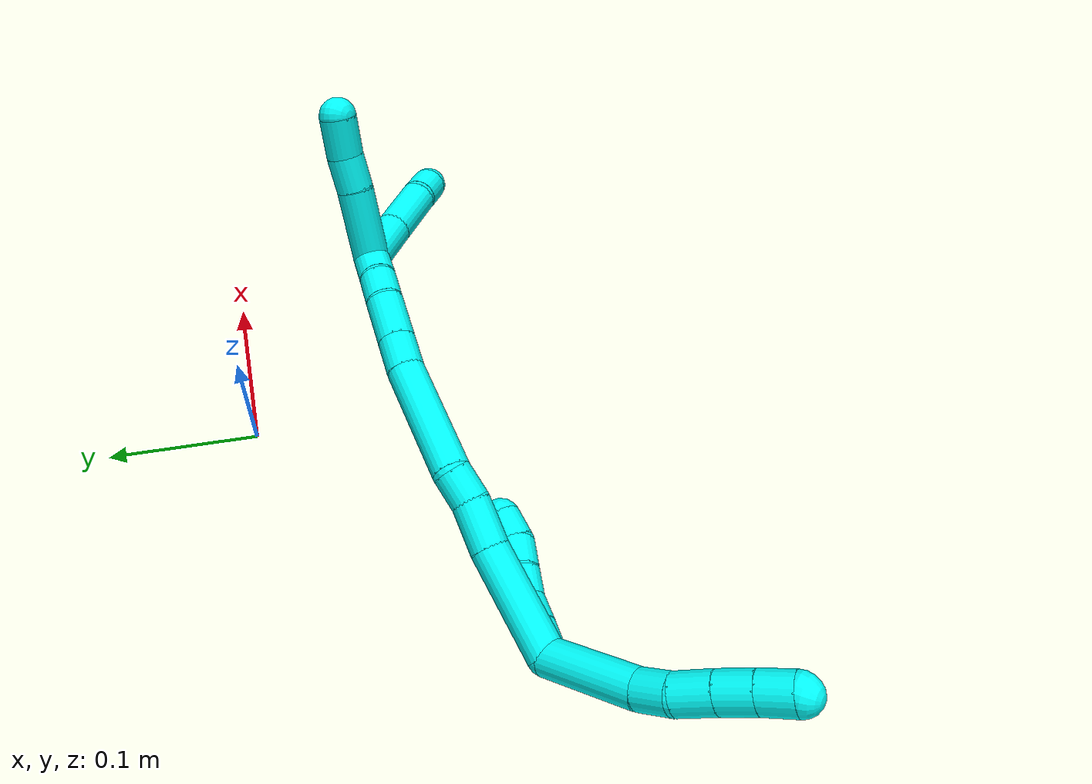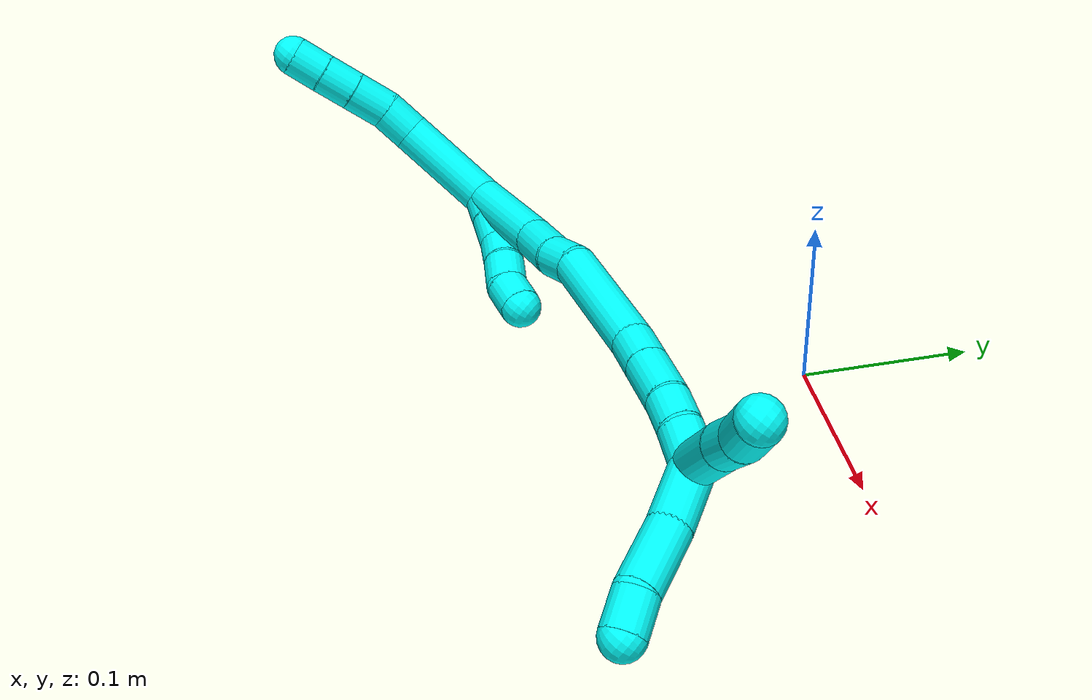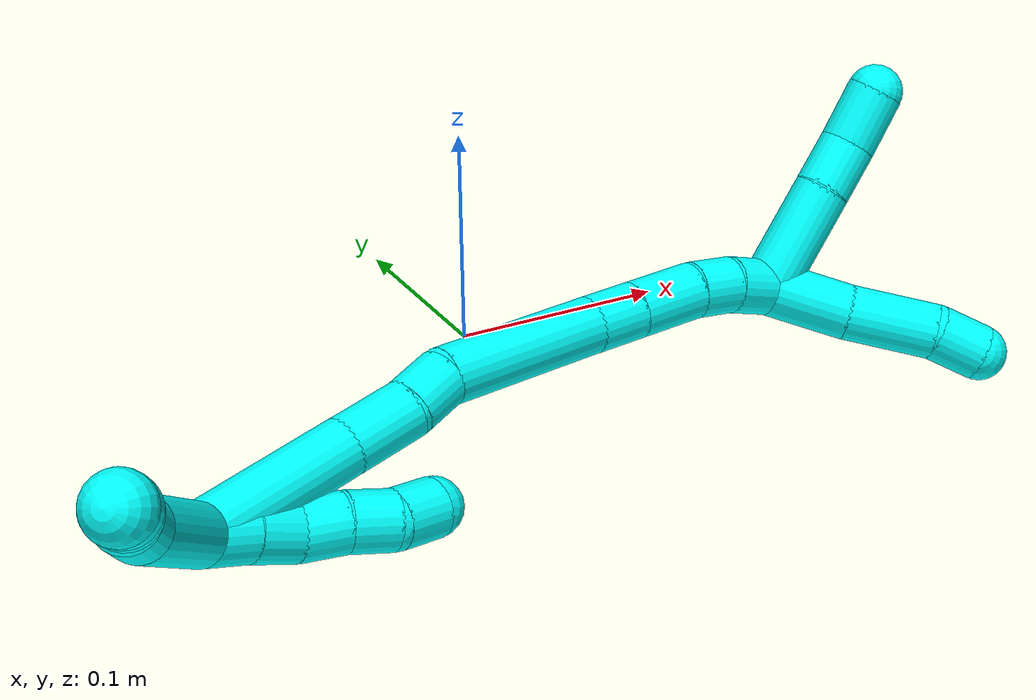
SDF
<sdf version="1.7">
 <world name="default">
  <model name="photoneo_s_sensor">
   <static>1</static>
   <pose>0 0 2 1.57079 1.57079 3.14159</pose>
   <link name="link">
    <inertial><mass>0.1</mass></inertial>
    <sensor name="sensor" type="depth">
     <update_rate>30</update_rate>
     <camera>
      <horizontal_fov>1.22</horizontal_fov>
      <image><width>1920</width><height>1200</height><format>B8G8R8</format></image>
      <clip><near>0.1</near><far>4</far></clip>
      <depth_camera><output>points</output></depth_camera>
     </camera>
     <plugin name="camera_plugin" filename="libgazebo_ros_depth_camera.so">
      <baseline>0.2</baseline>
      <alwaysOn>1</alwaysOn>
      <updateRate>0.0</updateRate>
      <cameraName>camera_ir</cameraName>
      <imageTopicName>/camera/color/image_raw</imageTopicName>
      <cameraInfoTopicName>/camera/color/camera_info</cameraInfoTopicName>
      <depthImageTopicName>/camera/depth/image_raw</depthImageTopicName>
      <depthImageCameraInfoTopicName>/camera/depth/camera_info</depthImageCameraInfoTopicName>
      <pointCloudTopicName>/camera/depth/points</pointCloudTopicName>
      <frameName>fr_optical</frameName>
      <pointCloudCutoff>0.1</pointCloudCutoff>
      <pointCloudCutoffMax>2.0</pointCloudCutoffMax>
      <distortionK1>0</distortionK1>
      <distortionK2>0</distortionK2>
      <distortionK3>0</distortionK3>
      <distortionT1>0</distortionT1>
      <distortionT2>0</distortionT2>
      <CxPrime>0</CxPrime>
      <Cx>0</Cx>
      <Cy>0</Cy>
      <focalLength>0</focalLength>
      <hackBaseline>0</hackBaseline>
     </plugin>
    </sensor>
   </link>
  </model>
  <model name="bin">
   <static>1</static>
   <link name="bottom">
    <collision name="collision-bottom">
     <pose>0 0 -0.01 0 -0 0</pose>
     <geometry><box><size>0.8 0.6 0.02</size></box></geometry>
     <surface>
      <friction><ode><mu>100</mu><mu2>100</mu2></ode></friction>
      <contact><collide_bitmask>65535</collide_bitmask></contact>
     </surface>
    </collision>
   </link>
   <link name="west_wall">
    <collision name="collision-west_wall">
     <pose>-0.41 0 0.1 0 -0 0</pose>
     <geometry><box><size>0.02 0.6 0.2</size></box></geometry>
     <surface>
      <friction><ode><mu>100</mu><mu2>100</mu2></ode></friction>
      <contact><collide_bitmask>65535</collide_bitmask></contact>
     </surface>
    </collision>
   </link>
   <link name="east_wall">
    <collision name="collision-east_wall">
     <pose>0.41 0 0.1 0 -0 0</pose>
     <geometry><box><size>0.02 0.6 0.2</size></box></geometry>
     <surface>
      <friction><ode><mu>100</mu><mu2>100</mu2></ode></friction>
      <contact><collide_bitmask>65535</collide_bitmask></contact>
     </surface>
    </collision>
   </link>
   <link name="south_wall">
    <collision name="collision-south_wall">
     <pose>0 -0.31 0.1 0 -0 0</pose>
     <geometry><box><size>0.8 0.02 0.2</size></box></geometry>
     <surface>
      <friction><ode><mu>100</mu><mu2>100</mu2></ode></friction>
      <contact><collide_bitmask>65535</collide_bitmask></contact>
     </surface>
    </collision>
   </link>
   <link name="north_wall">
    <collision name="collision-north_wall">
     <pose>0 0.31 0.1 0 -0 0</pose>
     <geometry><box><size>0.8 0.02 0.2</size></box></geometry>
     <surface>
      <friction><ode><mu>100</mu><mu2>100</mu2></ode></friction>
      <contact><collide_bitmask>65535</collide_bitmask></contact>
     </surface>
    </collision>
   </link>
  </model>
  <model name="3">
   <static>0</static>
   <link name="3">
    <collision name="collision-cylinder-e_1_2_8">
     <pose>0.002271 0.000904 0.031225 -0.02893 0.072573 -0.00105</pose>
     <geometry><cylinder><radius>0.0125</radius><length>0.06264</length></cylinder></geometry>
     <surface>
      <friction><ode><mu>1.16</mu><mu2>1.16</mu2><slip1>0</slip1><slip2>0</slip2></ode></friction>
      <contact><ode><kp>1e+06</kp><kd>1</kd><max_vel>0</max_vel><min_depth>0.001</min_depth></ode></contact>
     </surface>
    </collision>
    <visual name="visual-cylinder-e_1_2_8">
     <pose>0.002271 0.000904 0.031225 -0.02893 0.072573 -0.00105</pose>
     <geometry><cylinder><radius>0.0125</radius><length>0.06264</length></cylinder></geometry>
     <material><ambient>0.003922 1 0.996078 1</ambient></material>
    </visual>
    <collision name="collision-cylinder-e_2_8_9">
     <pose>0.00713 0.001555 0.072739 0.024522 0.246302 0.003035</pose>
     <geometry><cylinder><radius>0.0125</radius><length>0.021227</length></cylinder></geometry>
     <surface>
      <friction><ode><mu>1.16</mu><mu2>1.16</mu2><slip1>0</slip1><slip2>0</slip2></ode></friction>
      <contact><ode><kp>1e+06</kp><kd>1</kd><max_vel>0</max_vel><min_depth>0.001</min_depth></ode></contact>
     </surface>
    </collision>
    <visual name="visual-cylinder-e_2_8_9">
     <pose>0.00713 0.001555 0.072739 0.024522 0.246302 0.003035</pose>
     <geometry><cylinder><radius>0.0125</radius><length>0.021227</length></cylinder></geometry>
     <material><ambient>0.003922 1 0.996078 1</ambient></material>
    </visual>
    <collision name="collision-cylinder-e_3_9_10">
     <pose>0.013278 -0.001712 0.094136 0.264997 0.300061 0.040289</pose>
     <geometry><cylinder><radius>0.0125</radius><length>0.024093</length></cylinder></geometry>
     <surface>
      <friction><ode><mu>1.16</mu><mu2>1.16</mu2><slip1>0</slip1><slip2>0</slip2></ode></friction>
      <contact><ode><kp>1e+06</kp><kd>1</kd><max_vel>0</max_vel><min_depth>0.001</min_depth></ode></contact>
     </surface>
    </collision>
    <visual name="visual-cylinder-e_3_9_10">
     <pose>0.013278 -0.001712 0.094136 0.264997 0.300061 0.040289</pose>
     <geometry><cylinder><radius>0.0125</radius><length>0.024093</length></cylinder></geometry>
     <material><ambient>0.003922 1 0.996078 1</ambient></material>
    </visual>
    <collision name="collision-cylinder-e_4_10_11">
     <pose>0.019643 -0.007317 0.115357 0.250769 0.262348 0.033256</pose>
     <geometry><cylinder><radius>0.0125</radius><length>0.021622</length></cylinder></geometry>
     <surface>
      <friction><ode><mu>1.16</mu><mu2>1.16</mu2><slip1>0</slip1><slip2>0</slip2></ode></friction>
      <contact><ode><kp>1e+06</kp><kd>1</kd><max_vel>0</max_vel><min_depth>0.001</min_depth></ode></contact>
     </surface>
    </collision>
    <visual name="visual-cylinder-e_4_10_11">
     <pose>0.019643 -0.007317 0.115357 0.250769 0.262348 0.033256</pose>
     <geometry><cylinder><radius>0.0125</radius><length>0.021622</length></cylinder></geometry>
     <material><ambient>0.003922 1 0.996078 1</ambient></material>
    </visual>
    <collision name="collision-cylinder-e_5_11_6">
     <pose>0.024718 -0.012068 0.135188 0.218739 0.224378 0.024741</pose>
     <geometry><cylinder><radius>0.0125</radius><length>0.020417</length></cylinder></geometry>
     <surface>
      <friction><ode><mu>1.16</mu><mu2>1.16</mu2><slip1>0</slip1><slip2>0</slip2></ode></friction>
      <contact><ode><kp>1e+06</kp><kd>1</kd><max_vel>0</max_vel><min_depth>0.001</min_depth></ode></contact>
     </surface>
    </collision>
    <visual name="visual-cylinder-e_5_11_6">
     <pose>0.024718 -0.012068 0.135188 0.218739 0.224378 0.024741</pose>
     <geometry><cylinder><radius>0.0125</radius><length>0.020417</length></cylinder></geometry>
     <material><ambient>0.003922 1 0.996078 1</ambient></material>
    </visual>
    <collision name="collision-cylinder-e_1_2_12">
     <pose>0.004245 -0.005343 -0.007309 2.51032 0.43845 1.19749</pose>
     <geometry><cylinder><radius>0.0125</radius><length>0.02</length></cylinder></geometry>
     <surface>
      <friction><ode><mu>1.16</mu><mu2>1.16</mu2><slip1>0</slip1><slip2>0</slip2></ode></friction>
      <contact><ode><kp>1e+06</kp><kd>1</kd><max_vel>0</max_vel><min_depth>0.001</min_depth></ode></contact>
     </surface>
    </collision>
    <visual name="visual-cylinder-e_1_2_12">
     <pose>0.004245 -0.005343 -0.007309 2.51032 0.43845 1.19749</pose>
     <geometry><cylinder><radius>0.0125</radius><length>0.02</length></cylinder></geometry>
     <material><ambient>0.003922 1 0.996078 1</ambient></material>
    </visual>
    <collision name="collision-cylinder-e_2_12_13">
     <pose>0.011966 -0.016243 -0.022172 2.50734 0.35489 1.00015</pose>
     <geometry><cylinder><radius>0.0125</radius><length>0.02</length></cylinder></geometry>
     <surface>
      <friction><ode><mu>1.16</mu><mu2>1.16</mu2><slip1>0</slip1><slip2>0</slip2></ode></friction>
      <contact><ode><kp>1e+06</kp><kd>1</kd><max_vel>0</max_vel><min_depth>0.001</min_depth></ode></contact>
     </surface>
    </collision>
    <visual name="visual-cylinder-e_2_12_13">
     <pose>0.011966 -0.016243 -0.022172 2.50734 0.35489 1.00015</pose>
     <geometry><cylinder><radius>0.0125</radius><length>0.02</length></cylinder></geometry>
     <material><ambient>0.003922 1 0.996078 1</ambient></material>
    </visual>
    <collision name="collision-cylinder-e_3_13_14">
     <pose>0.021304 -0.027577 -0.035403 2.34757 0.626596 1.31572</pose>
     <geometry><cylinder><radius>0.0125</radius><length>0.02</length></cylinder></geometry>
     <surface>
      <friction><ode><mu>1.16</mu><mu2>1.16</mu2><slip1>0</slip1><slip2>0</slip2></ode></friction>
      <contact><ode><kp>1e+06</kp><kd>1</kd><max_vel>0</max_vel><min_depth>0.001</min_depth></ode></contact>
     </surface>
    </collision>
    <visual name="visual-cylinder-e_3_13_14">
     <pose>0.021304 -0.027577 -0.035403 2.34757 0.626596 1.31572</pose>
     <geometry><cylinder><radius>0.0125</radius><length>0.02</length></cylinder></geometry>
     <material><ambient>0.003922 1 0.996078 1</ambient></material>
    </visual>
    <collision name="collision-cylinder-e_4_14_15">
     <pose>0.031889 -0.03984 -0.047052 2.31491 0.491632 1.03917</pose>
     <geometry><cylinder><radius>0.0125</radius><length>0.02</length></cylinder></geometry>
     <surface>
      <friction><ode><mu>1.16</mu><mu2>1.16</mu2><slip1>0</slip1><slip2>0</slip2></ode></friction>
      <contact><ode><kp>1e+06</kp><kd>1</kd><max_vel>0</max_vel><min_depth>0.001</min_depth></ode></contact>
     </surface>
    </collision>
    <visual name="visual-cylinder-e_4_14_15">
     <pose>0.031889 -0.03984 -0.047052 2.31491 0.491632 1.03917</pose>
     <geometry><cylinder><radius>0.0125</radius><length>0.02</length></cylinder></geometry>
     <material><ambient>0.003922 1 0.996078 1</ambient></material>
    </visual>
    <collision name="collision-cylinder-e_5_15_5">
     <pose>0.041865 -0.04994 -0.060724 2.70271 0.553407 1.81011</pose>
     <geometry><cylinder><radius>0.0125</radius><length>0.02</length></cylinder></geometry>
     <surface>
      <friction><ode><mu>1.16</mu><mu2>1.16</mu2><slip1>0</slip1><slip2>0</slip2></ode></friction>
      <contact><ode><kp>1e+06</kp><kd>1</kd><max_vel>0</max_vel><min_depth>0.001</min_depth></ode></contact>
     </surface>
    </collision>
    <visual name="visual-cylinder-e_5_15_5">
     <pose>0.041865 -0.04994 -0.060724 2.70271 0.553407 1.81011</pose>
     <geometry><cylinder><radius>0.0125</radius><length>0.02</length></cylinder></geometry>
     <material><ambient>0.003922 1 0.996078 1</ambient></material>
    </visual>
    <collision name="collision-cylinder-e_1_2_16">
     <pose>0.024789 -0.007593 -0.024271 2.8384 0.772625 2.42303</pose>
     <geometry><cylinder><radius>0.0125</radius><length>0.071027</length></cylinder></geometry>
     <surface>
      <friction><ode><mu>1.16</mu><mu2>1.16</mu2><slip1>0</slip1><slip2>0</slip2></ode></friction>
      <contact><ode><kp>1e+06</kp><kd>1</kd><max_vel>0</max_vel><min_depth>0.001</min_depth></ode></contact>
     </surface>
    </collision>
    <visual name="visual-cylinder-e_1_2_16">
     <pose>0.024789 -0.007593 -0.024271 2.8384 0.772625 2.42303</pose>
     <geometry><cylinder><radius>0.0125</radius><length>0.071027</length></cylinder></geometry>
     <material><ambient>0.003922 1 0.996078 1</ambient></material>
    </visual>
    <collision name="collision-cylinder-e_2_16_17">
     <pose>0.061484 -0.019249 -0.057884 2.73135 0.86299 2.29281</pose>
     <geometry><cylinder><radius>0.0125</radius><length>0.031339</length></cylinder></geometry>
     <surface>
      <friction><ode><mu>1.16</mu><mu2>1.16</mu2><slip1>0</slip1><slip2>0</slip2></ode></friction>
      <contact><ode><kp>1e+06</kp><kd>1</kd><max_vel>0</max_vel><min_depth>0.001</min_depth></ode></contact>
     </surface>
    </collision>
    <visual name="visual-cylinder-e_2_16_17">
     <pose>0.061484 -0.019249 -0.057884 2.73135 0.86299 2.29281</pose>
     <geometry><cylinder><radius>0.0125</radius><length>0.031339</length></cylinder></geometry>
     <material><ambient>0.003922 1 0.996078 1</ambient></material>
    </visual>
    <collision name="collision-cylinder-e_3_17_18">
     <pose>0.081652 -0.024114 -0.074486 3.03153 0.846951 2.89837</pose>
     <geometry><cylinder><radius>0.0125</radius><length>0.022055</length></cylinder></geometry>
     <surface>
      <friction><ode><mu>1.16</mu><mu2>1.16</mu2><slip1>0</slip1><slip2>0</slip2></ode></friction>
      <contact><ode><kp>1e+06</kp><kd>1</kd><max_vel>0</max_vel><min_depth>0.001</min_depth></ode></contact>
     </surface>
    </collision>
    <visual name="visual-cylinder-e_3_17_18">
     <pose>0.081652 -0.024114 -0.074486 3.03153 0.846951 2.89837</pose>
     <geometry><cylinder><radius>0.0125</radius><length>0.022055</length></cylinder></geometry>
     <material><ambient>0.003922 1 0.996078 1</ambient></material>
    </visual>
    <collision name="collision-cylinder-e_4_18_19">
     <pose>0.113618 -0.038922 -0.109305 2.67143 0.65412 1.91209</pose>
     <geometry><cylinder><radius>0.0125</radius><length>0.077913</length></cylinder></geometry>
     <surface>
      <friction><ode><mu>1.16</mu><mu2>1.16</mu2><slip1>0</slip1><slip2>0</slip2></ode></friction>
      <contact><ode><kp>1e+06</kp><kd>1</kd><max_vel>0</max_vel><min_depth>0.001</min_depth></ode></contact>
     </surface>
    </collision>
    <visual name="visual-cylinder-e_4_18_19">
     <pose>0.113618 -0.038922 -0.109305 2.67143 0.65412 1.91209</pose>
     <geometry><cylinder><radius>0.0125</radius><length>0.077913</length></cylinder></geometry>
     <material><ambient>0.003922 1 0.996078 1</ambient></material>
    </visual>
    <collision name="collision-cylinder-e_5_19_20">
     <pose>0.144992 -0.057825 -0.144088 2.5457 0.721149 1.77464</pose>
     <geometry><cylinder><radius>0.0125</radius><length>0.023235</length></cylinder></geometry>
     <surface>
      <friction><ode><mu>1.16</mu><mu2>1.16</mu2><slip1>0</slip1><slip2>0</slip2></ode></friction>
      <contact><ode><kp>1e+06</kp><kd>1</kd><max_vel>0</max_vel><min_depth>0.001</min_depth></ode></contact>
     </surface>
    </collision>
    <visual name="visual-cylinder-e_5_19_20">
     <pose>0.144992 -0.057825 -0.144088 2.5457 0.721149 1.77464</pose>
     <geometry><cylinder><radius>0.0125</radius><length>0.023235</length></cylinder></geometry>
     <material><ambient>0.003922 1 0.996078 1</ambient></material>
    </visual>
    <collision name="collision-cylinder-e_6_20_21">
     <pose>0.163058 -0.069353 -0.161104 2.54645 0.721001 1.77573</pose>
     <geometry><cylinder><radius>0.0125</radius><length>0.031494</length></cylinder></geometry>
     <surface>
      <friction><ode><mu>1.16</mu><mu2>1.16</mu2><slip1>0</slip1><slip2>0</slip2></ode></friction>
      <contact><ode><kp>1e+06</kp><kd>1</kd><max_vel>0</max_vel><min_depth>0.001</min_depth></ode></contact>
     </surface>
    </collision>
    <visual name="visual-cylinder-e_6_20_21">
     <pose>0.163058 -0.069353 -0.161104 2.54645 0.721001 1.77573</pose>
     <geometry><cylinder><radius>0.0125</radius><length>0.031494</length></cylinder></geometry>
     <material><ambient>0.003922 1 0.996078 1</ambient></material>
    </visual>
    <collision name="collision-cylinder-e_7_21_22">
     <pose>0.178968 -0.081127 -0.177665 2.49171 0.575625 1.44189</pose>
     <geometry><cylinder><radius>0.0125</radius><length>0.020263</length></cylinder></geometry>
     <surface>
      <friction><ode><mu>1.16</mu><mu2>1.16</mu2><slip1>0</slip1><slip2>0</slip2></ode></friction>
      <contact><ode><kp>1e+06</kp><kd>1</kd><max_vel>0</max_vel><min_depth>0.001</min_depth></ode></contact>
     </surface>
    </collision>
    <visual name="visual-cylinder-e_7_21_22">
     <pose>0.178968 -0.081127 -0.177665 2.49171 0.575625 1.44189</pose>
     <geometry><cylinder><radius>0.0125</radius><length>0.020263</length></cylinder></geometry>
     <material><ambient>0.003922 1 0.996078 1</ambient></material>
    </visual>
    <collision name="collision-cylinder-e_8_22_1">
     <pose>0.188871 -0.092705 -0.192668 2.4784 0.397419 1.0584</pose>
     <geometry><cylinder><radius>0.0125</radius><length>0.022674</length></cylinder></geometry>
     <surface>
      <friction><ode><mu>1.16</mu><mu2>1.16</mu2><slip1>0</slip1><slip2>0</slip2></ode></friction>
      <contact><ode><kp>1e+06</kp><kd>1</kd><max_vel>0</max_vel><min_depth>0.001</min_depth></ode></contact>
     </surface>
    </collision>
    <visual name="visual-cylinder-e_8_22_1">
     <pose>0.188871 -0.092705 -0.192668 2.4784 0.397419 1.0584</pose>
     <geometry><cylinder><radius>0.0125</radius><length>0.022674</length></cylinder></geometry>
     <material><ambient>0.003922 1 0.996078 1</ambient></material>
    </visual>
    <collision name="collision-cylinder-e_1_1_23">
     <pose>0.217945 -0.096946 -0.20246 -2.18727 1.46231 -2.09586</pose>
     <geometry><cylinder><radius>0.0125</radius><length>0.049665</length></cylinder></geometry>
     <surface>
      <friction><ode><mu>1.16</mu><mu2>1.16</mu2><slip1>0</slip1><slip2>0</slip2></ode></friction>
      <contact><ode><kp>1e+06</kp><kd>1</kd><max_vel>0</max_vel><min_depth>0.001</min_depth></ode></contact>
     </surface>
    </collision>
    <visual name="visual-cylinder-e_1_1_23">
     <pose>0.217945 -0.096946 -0.20246 -2.18727 1.46231 -2.09586</pose>
     <geometry><cylinder><radius>0.0125</radius><length>0.049665</length></cylinder></geometry>
     <material><ambient>0.003922 1 0.996078 1</ambient></material>
    </visual>
    <collision name="collision-cylinder-e_2_23_24">
     <pose>0.254263 -0.093585 -0.205628 -2.51504 1.40123 -2.40811</pose>
     <geometry><cylinder><radius>0.0125</radius><length>0.023601</length></cylinder></geometry>
     <surface>
      <friction><ode><mu>1.16</mu><mu2>1.16</mu2><slip1>0</slip1><slip2>0</slip2></ode></friction>
      <contact><ode><kp>1e+06</kp><kd>1</kd><max_vel>0</max_vel><min_depth>0.001</min_depth></ode></contact>
     </surface>
    </collision>
    <visual name="visual-cylinder-e_2_23_24">
     <pose>0.254263 -0.093585 -0.205628 -2.51504 1.40123 -2.40811</pose>
     <geometry><cylinder><radius>0.0125</radius><length>0.023601</length></cylinder></geometry>
     <material><ambient>0.003922 1 0.996078 1</ambient></material>
    </visual>
    <collision name="collision-cylinder-e_3_24_4">
     <pose>0.279174 -0.090927 -0.206895 -1.34277 1.45608 -1.23244</pose>
     <geometry><cylinder><radius>0.0125</radius><length>0.026733</length></cylinder></geometry>
     <surface>
      <friction><ode><mu>1.16</mu><mu2>1.16</mu2><slip1>0</slip1><slip2>0</slip2></ode></friction>
      <contact><ode><kp>1e+06</kp><kd>1</kd><max_vel>0</max_vel><min_depth>0.001</min_depth></ode></contact>
     </surface>
    </collision>
    <visual name="visual-cylinder-e_3_24_4">
     <pose>0.279174 -0.090927 -0.206895 -1.34277 1.45608 -1.23244</pose>
     <geometry><cylinder><radius>0.0125</radius><length>0.026733</length></cylinder></geometry>
     <material><ambient>0.003922 1 0.996078 1</ambient></material>
    </visual>
    <collision name="collision-cylinder-e_1_1_25">
     <pose>0.19855 -0.116695 -0.205375 1.82011 0.284173 0.363999</pose>
     <geometry><cylinder><radius>0.0125</radius><length>0.037744</length></cylinder></geometry>
     <surface>
      <friction><ode><mu>1.16</mu><mu2>1.16</mu2><slip1>0</slip1><slip2>0</slip2></ode></friction>
      <contact><ode><kp>1e+06</kp><kd>1</kd><max_vel>0</max_vel><min_depth>0.001</min_depth></ode></contact>
     </surface>
    </collision>
    <visual name="visual-cylinder-e_1_1_25">
     <pose>0.19855 -0.116695 -0.205375 1.82011 0.284173 0.363999</pose>
     <geometry><cylinder><radius>0.0125</radius><length>0.037744</length></cylinder></geometry>
     <material><ambient>0.003922 1 0.996078 1</ambient></material>
    </visual>
    <collision name="collision-cylinder-e_2_25_26">
     <pose>0.211044 -0.152615 -0.212546 1.71681 0.370174 0.426948</pose>
     <geometry><cylinder><radius>0.0125</radius><length>0.039823</length></cylinder></geometry>
     <surface>
      <friction><ode><mu>1.16</mu><mu2>1.16</mu2><slip1>0</slip1><slip2>0</slip2></ode></friction>
      <contact><ode><kp>1e+06</kp><kd>1</kd><max_vel>0</max_vel><min_depth>0.001</min_depth></ode></contact>
     </surface>
    </collision>
    <visual name="visual-cylinder-e_2_25_26">
     <pose>0.211044 -0.152615 -0.212546 1.71681 0.370174 0.426948</pose>
     <geometry><cylinder><radius>0.0125</radius><length>0.039823</length></cylinder></geometry>
     <material><ambient>0.003922 1 0.996078 1</ambient></material>
    </visual>
    <collision name="collision-cylinder-e_3_26_3">
     <pose>0.219992 -0.181459 -0.218847 1.90179 0.156148 0.21834</pose>
     <geometry><cylinder><radius>0.0125</radius><length>0.022434</length></cylinder></geometry>
     <surface>
      <friction><ode><mu>1.16</mu><mu2>1.16</mu2><slip1>0</slip1><slip2>0</slip2></ode></friction>
      <contact><ode><kp>1e+06</kp><kd>1</kd><max_vel>0</max_vel><min_depth>0.001</min_depth></ode></contact>
     </surface>
    </collision>
    <visual name="visual-cylinder-e_3_26_3">
     <pose>0.219992 -0.181459 -0.218847 1.90179 0.156148 0.21834</pose>
     <geometry><cylinder><radius>0.0125</radius><length>0.022434</length></cylinder></geometry>
     <material><ambient>0.003922 1 0.996078 1</ambient></material>
    </visual>
    <collision name="collision-sphere-3">
     <pose>0.221736 -0.191938 -0.222448 0 -0 0</pose>
     <geometry><sphere><radius>0.0125</radius></sphere></geometry>
     <surface>
      <friction><ode><mu>1.16</mu><mu2>1.16</mu2><slip1>0</slip1><slip2>0</slip2></ode></friction>
      <contact><ode><kp>1e+06</kp><kd>1</kd><max_vel>0</max_vel><min_depth>0.001</min_depth></ode></contact>
     </surface>
    </collision>
    <visual name="visual-sphere-3">
     <pose>0.221736 -0.191938 -0.222448 0 -0 0</pose>
     <geometry><sphere><radius>0.0125</radius></sphere></geometry>
     <material><ambient>0.003922 1 0.996078 1</ambient></material>
    </visual>
    <collision name="collision-sphere-26">
     <pose>0.218248 -0.17098 -0.215247 0 -0 0</pose>
     <geometry><sphere><radius>0.0125</radius></sphere></geometry>
     <surface>
      <friction><ode><mu>1.16</mu><mu2>1.16</mu2><slip1>0</slip1><slip2>0</slip2></ode></friction>
      <contact><ode><kp>1e+06</kp><kd>1</kd><max_vel>0</max_vel><min_depth>0.001</min_depth></ode></contact>
     </surface>
    </collision>
    <visual name="visual-sphere-26">
     <pose>0.218248 -0.17098 -0.215247 0 -0 0</pose>
     <geometry><sphere><radius>0.0125</radius></sphere></geometry>
     <material><ambient>0.003922 1 0.996078 1</ambient></material>
    </visual>
    <collision name="collision-sphere-25">
     <pose>0.203841 -0.13425 -0.209845 0 -0 0</pose>
     <geometry><sphere><radius>0.0125</radius></sphere></geometry>
     <surface>
      <friction><ode><mu>1.16</mu><mu2>1.16</mu2><slip1>0</slip1><slip2>0</slip2></ode></friction>
      <contact><ode><kp>1e+06</kp><kd>1</kd><max_vel>0</max_vel><min_depth>0.001</min_depth></ode></contact>
     </surface>
    </collision>
    <visual name="visual-sphere-25">
     <pose>0.203841 -0.13425 -0.209845 0 -0 0</pose>
     <geometry><sphere><radius>0.0125</radius></sphere></geometry>
     <material><ambient>0.003922 1 0.996078 1</ambient></material>
    </visual>
    <collision name="collision-sphere-4">
     <pose>0.292453 -0.089436 -0.206549 0 -0 0</pose>
     <geometry><sphere><radius>0.0125</radius></sphere></geometry>
     <surface>
      <friction><ode><mu>1.16</mu><mu2>1.16</mu2><slip1>0</slip1><slip2>0</slip2></ode></friction>
      <contact><ode><kp>1e+06</kp><kd>1</kd><max_vel>0</max_vel><min_depth>0.001</min_depth></ode></contact>
     </surface>
    </collision>
    <visual name="visual-sphere-4">
     <pose>0.292453 -0.089436 -0.206549 0 -0 0</pose>
     <geometry><sphere><radius>0.0125</radius></sphere></geometry>
     <material><ambient>0.003922 1 0.996078 1</ambient></material>
    </visual>
    <collision name="collision-sphere-24">
     <pose>0.265895 -0.092417 -0.207241 0 -0 0</pose>
     <geometry><sphere><radius>0.0125</radius></sphere></geometry>
     <surface>
      <friction><ode><mu>1.16</mu><mu2>1.16</mu2><slip1>0</slip1><slip2>0</slip2></ode></friction>
      <contact><ode><kp>1e+06</kp><kd>1</kd><max_vel>0</max_vel><min_depth>0.001</min_depth></ode></contact>
     </surface>
    </collision>
    <visual name="visual-sphere-24">
     <pose>0.265895 -0.092417 -0.207241 0 -0 0</pose>
     <geometry><sphere><radius>0.0125</radius></sphere></geometry>
     <material><ambient>0.003922 1 0.996078 1</ambient></material>
    </visual>
    <collision name="collision-sphere-23">
     <pose>0.242632 -0.094753 -0.204015 0 -0 0</pose>
     <geometry><sphere><radius>0.0125</radius></sphere></geometry>
     <surface>
      <friction><ode><mu>1.16</mu><mu2>1.16</mu2><slip1>0</slip1><slip2>0</slip2></ode></friction>
      <contact><ode><kp>1e+06</kp><kd>1</kd><max_vel>0</max_vel><min_depth>0.001</min_depth></ode></contact>
     </surface>
    </collision>
    <visual name="visual-sphere-23">
     <pose>0.242632 -0.094753 -0.204015 0 -0 0</pose>
     <geometry><sphere><radius>0.0125</radius></sphere></geometry>
     <material><ambient>0.003922 1 0.996078 1</ambient></material>
    </visual>
    <collision name="collision-sphere-1">
     <pose>0.193259 -0.09914 -0.200906 0 -0 0</pose>
     <geometry><sphere><radius>0.0125</radius></sphere></geometry>
     <surface>
      <friction><ode><mu>1.16</mu><mu2>1.16</mu2><slip1>0</slip1><slip2>0</slip2></ode></friction>
      <contact><ode><kp>1e+06</kp><kd>1</kd><max_vel>0</max_vel><min_depth>0.001</min_depth></ode></contact>
     </surface>
    </collision>
    <visual name="visual-sphere-1">
     <pose>0.193259 -0.09914 -0.200906 0 -0 0</pose>
     <geometry><sphere><radius>0.0125</radius></sphere></geometry>
     <material><ambient>0.003922 1 0.996078 1</ambient></material>
    </visual>
    <collision name="collision-sphere-22">
     <pose>0.184483 -0.086269 -0.184431 0 -0 0</pose>
     <geometry><sphere><radius>0.0125</radius></sphere></geometry>
     <surface>
      <friction><ode><mu>1.16</mu><mu2>1.16</mu2><slip1>0</slip1><slip2>0</slip2></ode></friction>
      <contact><ode><kp>1e+06</kp><kd>1</kd><max_vel>0</max_vel><min_depth>0.001</min_depth></ode></contact>
     </surface>
    </collision>
    <visual name="visual-sphere-22">
     <pose>0.184483 -0.086269 -0.184431 0 -0 0</pose>
     <geometry><sphere><radius>0.0125</radius></sphere></geometry>
     <material><ambient>0.003922 1 0.996078 1</ambient></material>
    </visual>
    <collision name="collision-sphere-21">
     <pose>0.173453 -0.075984 -0.170898 0 -0 0</pose>
     <geometry><sphere><radius>0.0125</radius></sphere></geometry>
     <surface>
      <friction><ode><mu>1.16</mu><mu2>1.16</mu2><slip1>0</slip1><slip2>0</slip2></ode></friction>
      <contact><ode><kp>1e+06</kp><kd>1</kd><max_vel>0</max_vel><min_depth>0.001</min_depth></ode></contact>
     </surface>
    </collision>
    <visual name="visual-sphere-21">
     <pose>0.173453 -0.075984 -0.170898 0 -0 0</pose>
     <geometry><sphere><radius>0.0125</radius></sphere></geometry>
     <material><ambient>0.003922 1 0.996078 1</ambient></material>
    </visual>
    <collision name="collision-sphere-6">
     <pose>0.02699 -0.014227 0.144903 0 -0 0</pose>
     <geometry><sphere><radius>0.0125</radius></sphere></geometry>
     <surface>
      <friction><ode><mu>1.16</mu><mu2>1.16</mu2><slip1>0</slip1><slip2>0</slip2></ode></friction>
      <contact><ode><kp>1e+06</kp><kd>1</kd><max_vel>0</max_vel><min_depth>0.001</min_depth></ode></contact>
     </surface>
    </collision>
    <visual name="visual-sphere-6">
     <pose>0.02699 -0.014227 0.144903 0 -0 0</pose>
     <geometry><sphere><radius>0.0125</radius></sphere></geometry>
     <material><ambient>0.003922 1 0.996078 1</ambient></material>
    </visual>
    <collision name="collision-sphere-11">
     <pose>0.022447 -0.009908 0.125472 0 -0 0</pose>
     <geometry><sphere><radius>0.0125</radius></sphere></geometry>
     <surface>
      <friction><ode><mu>1.16</mu><mu2>1.16</mu2><slip1>0</slip1><slip2>0</slip2></ode></friction>
      <contact><ode><kp>1e+06</kp><kd>1</kd><max_vel>0</max_vel><min_depth>0.001</min_depth></ode></contact>
     </surface>
    </collision>
    <visual name="visual-sphere-11">
     <pose>0.022447 -0.009908 0.125472 0 -0 0</pose>
     <geometry><sphere><radius>0.0125</radius></sphere></geometry>
     <material><ambient>0.003922 1 0.996078 1</ambient></material>
    </visual>
    <collision name="collision-sphere-10">
     <pose>0.016839 -0.004726 0.105243 0 -0 0</pose>
     <geometry><sphere><radius>0.0125</radius></sphere></geometry>
     <surface>
      <friction><ode><mu>1.16</mu><mu2>1.16</mu2><slip1>0</slip1><slip2>0</slip2></ode></friction>
      <contact><ode><kp>1e+06</kp><kd>1</kd><max_vel>0</max_vel><min_depth>0.001</min_depth></ode></contact>
     </surface>
    </collision>
    <visual name="visual-sphere-10">
     <pose>0.016839 -0.004726 0.105243 0 -0 0</pose>
     <geometry><sphere><radius>0.0125</radius></sphere></geometry>
     <material><ambient>0.003922 1 0.996078 1</ambient></material>
    </visual>
    <collision name="collision-sphere-9">
     <pose>0.009718 0.001302 0.083029 0 -0 0</pose>
     <geometry><sphere><radius>0.0125</radius></sphere></geometry>
     <surface>
      <friction><ode><mu>1.16</mu><mu2>1.16</mu2><slip1>0</slip1><slip2>0</slip2></ode></friction>
      <contact><ode><kp>1e+06</kp><kd>1</kd><max_vel>0</max_vel><min_depth>0.001</min_depth></ode></contact>
     </surface>
    </collision>
    <visual name="visual-sphere-9">
     <pose>0.009718 0.001302 0.083029 0 -0 0</pose>
     <geometry><sphere><radius>0.0125</radius></sphere></geometry>
     <material><ambient>0.003922 1 0.996078 1</ambient></material>
    </visual>
    <collision name="collision-sphere-2">
     <geometry><sphere><radius>0.0125</radius></sphere></geometry>
     <surface>
      <friction><ode><mu>1.16</mu><mu2>1.16</mu2><slip1>0</slip1><slip2>0</slip2></ode></friction>
      <contact><ode><kp>1e+06</kp><kd>1</kd><max_vel>0</max_vel><min_depth>0.001</min_depth></ode></contact>
     </surface>
    </collision>
    <visual name="visual-sphere-2">
     <geometry><sphere><radius>0.0125</radius></sphere></geometry>
     <material><ambient>0.003922 1 0.996078 1</ambient></material>
    </visual>
    <collision name="collision-sphere-19">
     <pose>0.137322 -0.052928 -0.136866 0 -0 0</pose>
     <geometry><sphere><radius>0.0125</radius></sphere></geometry>
     <surface>
      <friction><ode><mu>1.16</mu><mu2>1.16</mu2><slip1>0</slip1><slip2>0</slip2></ode></friction>
      <contact><ode><kp>1e+06</kp><kd>1</kd><max_vel>0</max_vel><min_depth>0.001</min_depth></ode></contact>
     </surface>
    </collision>
    <visual name="visual-sphere-19">
     <pose>0.137322 -0.052928 -0.136866 0 -0 0</pose>
     <geometry><sphere><radius>0.0125</radius></sphere></geometry>
     <material><ambient>0.003922 1 0.996078 1</ambient></material>
    </visual>
    <collision name="collision-sphere-8">
     <pose>0.004542 0.001807 0.062449 0 -0 0</pose>
     <geometry><sphere><radius>0.0125</radius></sphere></geometry>
     <surface>
      <friction><ode><mu>1.16</mu><mu2>1.16</mu2><slip1>0</slip1><slip2>0</slip2></ode></friction>
      <contact><ode><kp>1e+06</kp><kd>1</kd><max_vel>0</max_vel><min_depth>0.001</min_depth></ode></contact>
     </surface>
    </collision>
    <visual name="visual-sphere-8">
     <pose>0.004542 0.001807 0.062449 0 -0 0</pose>
     <geometry><sphere><radius>0.0125</radius></sphere></geometry>
     <material><ambient>0.003922 1 0.996078 1</ambient></material>
    </visual>
    <collision name="collision-sphere-12">
     <pose>0.008491 -0.010687 -0.014618 0 -0 0</pose>
     <geometry><sphere><radius>0.0125</radius></sphere></geometry>
     <surface>
      <friction><ode><mu>1.16</mu><mu2>1.16</mu2><slip1>0</slip1><slip2>0</slip2></ode></friction>
      <contact><ode><kp>1e+06</kp><kd>1</kd><max_vel>0</max_vel><min_depth>0.001</min_depth></ode></contact>
     </surface>
    </collision>
    <visual name="visual-sphere-12">
     <pose>0.008491 -0.010687 -0.014618 0 -0 0</pose>
     <geometry><sphere><radius>0.0125</radius></sphere></geometry>
     <material><ambient>0.003922 1 0.996078 1</ambient></material>
    </visual>
    <collision name="collision-sphere-13">
     <pose>0.01544 -0.0218 -0.029725 0 -0 0</pose>
     <geometry><sphere><radius>0.0125</radius></sphere></geometry>
     <surface>
      <friction><ode><mu>1.16</mu><mu2>1.16</mu2><slip1>0</slip1><slip2>0</slip2></ode></friction>
      <contact><ode><kp>1e+06</kp><kd>1</kd><max_vel>0</max_vel><min_depth>0.001</min_depth></ode></contact>
     </surface>
    </collision>
    <visual name="visual-sphere-13">
     <pose>0.01544 -0.0218 -0.029725 0 -0 0</pose>
     <geometry><sphere><radius>0.0125</radius></sphere></geometry>
     <material><ambient>0.003922 1 0.996078 1</ambient></material>
    </visual>
    <collision name="collision-sphere-14">
     <pose>0.027168 -0.033354 -0.041081 0 -0 0</pose>
     <geometry><sphere><radius>0.0125</radius></sphere></geometry>
     <surface>
      <friction><ode><mu>1.16</mu><mu2>1.16</mu2><slip1>0</slip1><slip2>0</slip2></ode></friction>
      <contact><ode><kp>1e+06</kp><kd>1</kd><max_vel>0</max_vel><min_depth>0.001</min_depth></ode></contact>
     </surface>
    </collision>
    <visual name="visual-sphere-14">
     <pose>0.027168 -0.033354 -0.041081 0 -0 0</pose>
     <geometry><sphere><radius>0.0125</radius></sphere></geometry>
     <material><ambient>0.003922 1 0.996078 1</ambient></material>
    </visual>
    <collision name="collision-sphere-15">
     <pose>0.03661 -0.046325 -0.053023 0 -0 0</pose>
     <geometry><sphere><radius>0.0125</radius></sphere></geometry>
     <surface>
      <friction><ode><mu>1.16</mu><mu2>1.16</mu2><slip1>0</slip1><slip2>0</slip2></ode></friction>
      <contact><ode><kp>1e+06</kp><kd>1</kd><max_vel>0</max_vel><min_depth>0.001</min_depth></ode></contact>
     </surface>
    </collision>
    <visual name="visual-sphere-15">
     <pose>0.03661 -0.046325 -0.053023 0 -0 0</pose>
     <geometry><sphere><radius>0.0125</radius></sphere></geometry>
     <material><ambient>0.003922 1 0.996078 1</ambient></material>
    </visual>
    <collision name="collision-sphere-5">
     <pose>0.047121 -0.053555 -0.068425 0 -0 0</pose>
     <geometry><sphere><radius>0.0125</radius></sphere></geometry>
     <surface>
      <friction><ode><mu>1.16</mu><mu2>1.16</mu2><slip1>0</slip1><slip2>0</slip2></ode></friction>
      <contact><ode><kp>1e+06</kp><kd>1</kd><max_vel>0</max_vel><min_depth>0.001</min_depth></ode></contact>
     </surface>
    </collision>
    <visual name="visual-sphere-5">
     <pose>0.047121 -0.053555 -0.068425 0 -0 0</pose>
     <geometry><sphere><radius>0.0125</radius></sphere></geometry>
     <material><ambient>0.003922 1 0.996078 1</ambient></material>
    </visual>
    <collision name="collision-sphere-16">
     <pose>0.049578 -0.015186 -0.048541 0 -0 0</pose>
     <geometry><sphere><radius>0.0125</radius></sphere></geometry>
     <surface>
      <friction><ode><mu>1.16</mu><mu2>1.16</mu2><slip1>0</slip1><slip2>0</slip2></ode></friction>
      <contact><ode><kp>1e+06</kp><kd>1</kd><max_vel>0</max_vel><min_depth>0.001</min_depth></ode></contact>
     </surface>
    </collision>
    <visual name="visual-sphere-16">
     <pose>0.049578 -0.015186 -0.048541 0 -0 0</pose>
     <geometry><sphere><radius>0.0125</radius></sphere></geometry>
     <material><ambient>0.003922 1 0.996078 1</ambient></material>
    </visual>
    <collision name="collision-sphere-17">
     <pose>0.07339 -0.023312 -0.067226 0 -0 0</pose>
     <geometry><sphere><radius>0.0125</radius></sphere></geometry>
     <surface>
      <friction><ode><mu>1.16</mu><mu2>1.16</mu2><slip1>0</slip1><slip2>0</slip2></ode></friction>
      <contact><ode><kp>1e+06</kp><kd>1</kd><max_vel>0</max_vel><min_depth>0.001</min_depth></ode></contact>
     </surface>
    </collision>
    <visual name="visual-sphere-17">
     <pose>0.07339 -0.023312 -0.067226 0 -0 0</pose>
     <geometry><sphere><radius>0.0125</radius></sphere></geometry>
     <material><ambient>0.003922 1 0.996078 1</ambient></material>
    </visual>
    <collision name="collision-sphere-18">
     <pose>0.089915 -0.024917 -0.081745 0 -0 0</pose>
     <geometry><sphere><radius>0.0125</radius></sphere></geometry>
     <surface>
      <friction><ode><mu>1.16</mu><mu2>1.16</mu2><slip1>0</slip1><slip2>0</slip2></ode></friction>
      <contact><ode><kp>1e+06</kp><kd>1</kd><max_vel>0</max_vel><min_depth>0.001</min_depth></ode></contact>
     </surface>
    </collision>
    <visual name="visual-sphere-18">
     <pose>0.089915 -0.024917 -0.081745 0 -0 0</pose>
     <geometry><sphere><radius>0.0125</radius></sphere></geometry>
     <material><ambient>0.003922 1 0.996078 1</ambient></material>
    </visual>
    <collision name="collision-sphere-20">
     <pose>0.152663 -0.062722 -0.151309 0 -0 0</pose>
     <geometry><sphere><radius>0.0125</radius></sphere></geometry>
     <surface>
      <friction><ode><mu>1.16</mu><mu2>1.16</mu2><slip1>0</slip1><slip2>0</slip2></ode></friction>
      <contact><ode><kp>1e+06</kp><kd>1</kd><max_vel>0</max_vel><min_depth>0.001</min_depth></ode></contact>
     </surface>
    </collision>
    <visual name="visual-sphere-20">
     <pose>0.152663 -0.062722 -0.151309 0 -0 0</pose>
     <geometry><sphere><radius>0.0125</radius></sphere></geometry>
     <material><ambient>0.003922 1 0.996078 1</ambient></material>
    </visual>
    <inertial>
     <pose>0.106192 -0.052164 -0.085443 0 -0 0</pose>
     <mass>0.75</mass>
     <inertia>
      <ixx>0.000108</ixx>
      <ixy>0</ixy>
      <ixz>0</ixz>
      <iyy>0.000151</iyy>
      <iyz>0</iyz>
      <izz>-5.4e-05</izz>
     </inertia>
    </inertial>
   </link>
   <pose>-0.184402 -0.156616 0.031164 0.723674 -0.872528 0.009697</pose>
  </model>
 </world>
</sdf>
